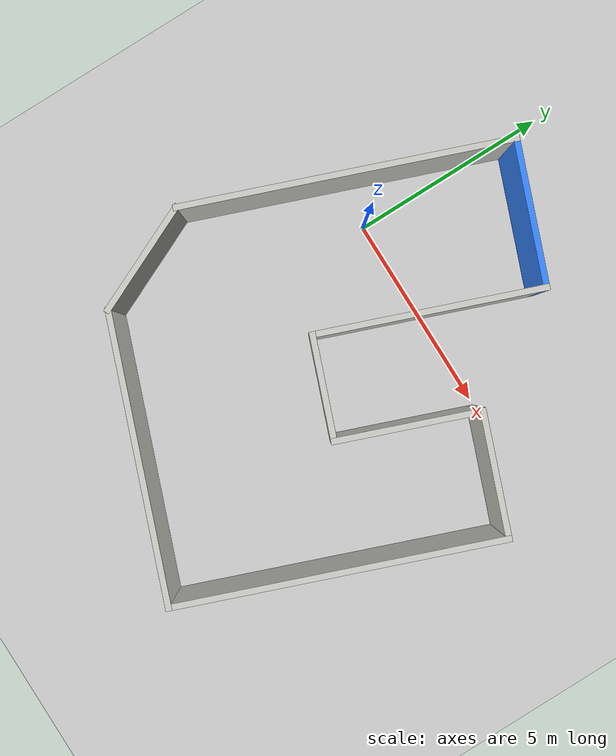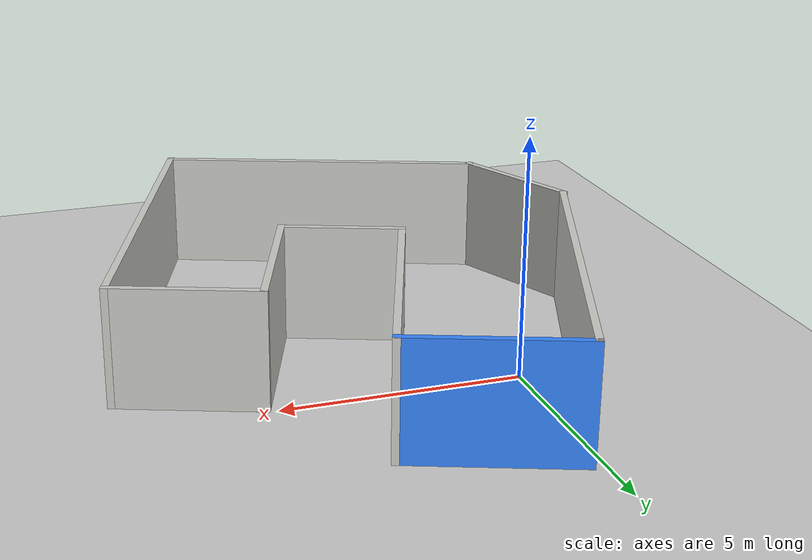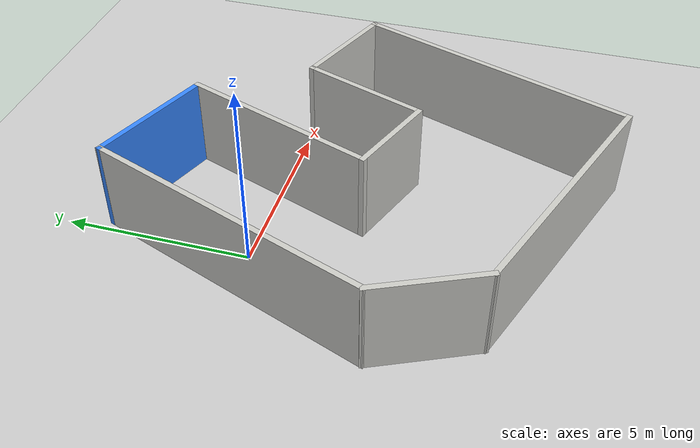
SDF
<sdf version="1.6">
 <world name="default">
  <light name="sun" type="directional">
   <pose>0 0 10 0 -0 0</pose>
   <diffuse>0.8 0.8 0.8 1</diffuse>
   <specular>0.1 0.1 0.1 1</specular>
   <attenuation>
    <range>1000</range>
    <constant>0.9</constant>
    <linear>0.01</linear>
    <quadratic>0.001</quadratic>
   </attenuation>
   <direction>-0.5 0.5 -1</direction>
  </light>
  <model name="ground_plane">
   <static>1</static>
   <link name="link">
    <collision name="collision">
     <geometry><plane><normal>0 0 1</normal><size>100 100</size></plane></geometry>
     <surface><friction><ode><mu>100</mu><mu2>50</mu2></ode></friction></surface>
    </collision>
    <visual name="visual">
     <cast_shadows>0</cast_shadows>
     <geometry><plane><normal>0 0 1</normal><size>100 100</size></plane></geometry>
     <material>
      <script><uri>file://media/materials/scripts/gazebo.material</uri><name>Gazebo/Grey</name></script>
     </material>
    </visual>
   </link>
  </model>
  <gravity>0 0 -9.8</gravity>
  <magnetic_field>6e-06 2.3e-05 -4.2e-05</magnetic_field>
  <atmosphere type="adiabatic"/>
  <physics name="default_physics" default="0" type="ode">
   <max_step_size>0.001</max_step_size>
   <real_time_factor>1</real_time_factor>
   <real_time_update_rate>1000</real_time_update_rate>
  </physics>
  <scene><ambient>0.4 0.4 0.4 1</ambient><background>0.7 0.7 0.7 1</background><shadows>1</shadows></scene>
  <spherical_coordinates>
   <surface_model>EARTH_WGS84</surface_model>
   <latitude_deg>0</latitude_deg>
   <longitude_deg>0</longitude_deg>
   <elevation>0</elevation>
   <heading_deg>0</heading_deg>
  </spherical_coordinates>
  <model name="RoboHouse">
   <pose>2.73047 -2.40404 0 0 0 -0.358582</pose>
   <link name="Wall_0">
    <collision name="Wall_0_Collision">
     <geometry><box><size>8.15 0.15 2.5</size></box></geometry>
     <pose>0 0 1.25 0 -0 0</pose>
    </collision>
    <visual name="Wall_0_Visual">
     <pose>0 0 1.25 0 -0 0</pose>
     <geometry><box><size>8.15 0.15 2.5</size></box></geometry>
     <material>
      <script><uri>file://media/materials/scripts/gazebo.material</uri><name>Gazebo/CeilingTiled</name></script>
      <ambient>0.215686 0.529412 1 1</ambient>
     </material>
    </visual>
    <pose>-4.48447 1.01553 0 0 0 -1.5708</pose>
   </link>
   <link name="Wall_1">
    <collision name="Wall_1_Collision">
     <geometry><box><size>2.97843 0.15 2.5</size></box></geometry>
     <pose>0 0 1.25 0 -0 0</pose>
    </collision>
    <visual name="Wall_1_Visual">
     <pose>0 0 1.25 0 -0 0</pose>
     <geometry><box><size>2.97843 0.15 2.5</size></box></geometry>
     <material>
      <script><uri>file://media/materials/scripts/gazebo.material</uri><name>Gazebo/CeilingTiled</name></script>
      <ambient>0.215686 0.529412 1 1</ambient>
     </material>
    </visual>
    <pose>-3.48447 -3.98447 0 0 0 -0.785398</pose>
   </link>
   <link name="Wall_2">
    <collision name="Wall_2_Collision">
     <geometry><box><size>7.15 0.15 2.5</size></box></geometry>
     <pose>0 0 1.25 0 -0 0</pose>
    </collision>
    <visual name="Wall_2_Visual">
     <pose>0 0 1.25 0 -0 0</pose>
     <geometry><box><size>7.15 0.15 2.5</size></box></geometry>
     <material>
      <script><uri>file://media/materials/scripts/gazebo.material</uri><name>Gazebo/CeilingTiled</name></script>
      <ambient>0.286275 0.905882 1 1</ambient>
     </material>
    </visual>
    <pose>1.01553 -4.98447 0 0 -0 0</pose>
   </link>
   <link name="Wall_3">
    <collision name="Wall_3_Collision">
     <geometry><box><size>8.15 0.15 2.5</size></box></geometry>
     <pose>0 0 1.25 0 -0 0</pose>
    </collision>
    <visual name="Wall_3_Visual">
     <pose>0 0 1.25 0 -0 0</pose>
     <geometry><box><size>8.15 0.15 2.5</size></box></geometry>
     <material>
      <script><uri>file://media/materials/scripts/gazebo.material</uri><name>Gazebo/CeilingTiled</name></script>
      <ambient>0.435294 0.796078 0.67451 1</ambient>
     </material>
    </visual>
    <pose>4.51553 -0.984467 0 0 -0 1.5708</pose>
   </link>
   <link name="Wall_4">
    <collision name="Wall_4_Collision">
     <geometry><box><size>3.15 0.15 2.5</size></box></geometry>
     <pose>0 0 1.25 0 -0 0</pose>
    </collision>
    <visual name="Wall_4_Visual">
     <pose>0 0 1.25 0 -0 0</pose>
     <geometry><box><size>3.15 0.15 2.5</size></box></geometry>
     <material>
      <script><uri>file://media/materials/scripts/gazebo.material</uri><name>Gazebo/CeilingTiled</name></script>
      <ambient>0.435294 0.796078 0.67451 1</ambient>
     </material>
    </visual>
    <pose>3.01553 3.01553 0 0 -0 3.14159</pose>
   </link>
   <link name="Wall_5">
    <collision name="Wall_5_Collision">
     <geometry><box><size>3.65 0.15 2.5</size></box></geometry>
     <pose>0 0 1.25 0 -0 0</pose>
    </collision>
    <visual name="Wall_5_Visual">
     <pose>0 0 1.25 0 -0 0</pose>
     <geometry><box><size>3.65 0.15 2.5</size></box></geometry>
     <material>
      <script><uri>file://media/materials/scripts/gazebo.material</uri><name>Gazebo/CeilingTiled</name></script>
      <ambient>0.435294 0.796078 0.67451 1</ambient>
     </material>
    </visual>
    <pose>1.51553 1.26553 0 0 0 -1.5708</pose>
   </link>
   <link name="Wall_6">
    <collision name="Wall_6_Collision">
     <geometry><box><size>2.65 0.15 2.5</size></box></geometry>
     <pose>0 0 1.25 0 -0 0</pose>
    </collision>
    <visual name="Wall_6_Visual">
     <pose>0 0 1.25 0 -0 0</pose>
     <geometry><box><size>2.65 0.15 2.5</size></box></geometry>
     <material>
      <script><uri>file://media/materials/scripts/gazebo.material</uri><name>Gazebo/CeilingTiled</name></script>
      <ambient>0.286275 0.905882 1 1</ambient>
     </material>
    </visual>
    <pose>0.265533 -0.484467 0 0 -0 3.14159</pose>
   </link>
   <link name="Wall_7">
    <collision name="Wall_7_Collision">
     <geometry><box><size>5.65 0.15 2.5</size></box></geometry>
     <pose>0 0 1.25 0 -0 0</pose>
    </collision>
    <visual name="Wall_7_Visual">
     <pose>0 0 1.25 0 -0 0</pose>
     <geometry><box><size>5.65 0.15 2.5</size></box></geometry>
     <material>
      <script><uri>file://media/materials/scripts/gazebo.material</uri><name>Gazebo/CeilingTiled</name></script>
      <ambient>0.215686 0.529412 1 1</ambient>
     </material>
    </visual>
    <pose>-0.984467 2.26553 0 0 -0 1.5708</pose>
   </link>
   <link name="Wall_8">
    <collision name="Wall_8_Collision">
     <geometry><box><size>3.65 0.15 2.5</size></box></geometry>
     <pose>0 0 1.25 0 -0 0</pose>
    </collision>
    <visual name="Wall_8_Visual">
     <pose>0 0 1.25 0 -0 0</pose>
     <geometry><box><size>3.65 0.15 2.5</size></box></geometry>
     <material>
      <script><uri>file://media/materials/scripts/gazebo.material</uri><name>Gazebo/Grey</name></script>
      <ambient>0.215686 0.529412 1 1</ambient>
     </material>
    </visual>
    <pose>-2.73447 5.01553 0 0 -0 3.14159</pose>
   </link>
   <link name="Wall_9">
    <collision name="Wall_9_Collision">
     <geometry><box><size>0.15 0.15 2.5</size></box></geometry>
     <pose>0 0 1.25 0 -0 0</pose>
    </collision>
    <visual name="Wall_9_Visual">
     <pose>0 0 1.25 0 -0 0</pose>
     <geometry><box><size>0.15 0.15 2.5</size></box></geometry>
     <material>
      <script><uri>file://media/materials/scripts/gazebo.material</uri><name>Gazebo/CeilingTiled</name></script>
      <ambient>1 1 1 1</ambient>
     </material>
    </visual>
    <pose>-4.48447 5.01553 0 0 -0 0</pose>
   </link>
   <static>1</static>
  </model>
 </world>
</sdf>
